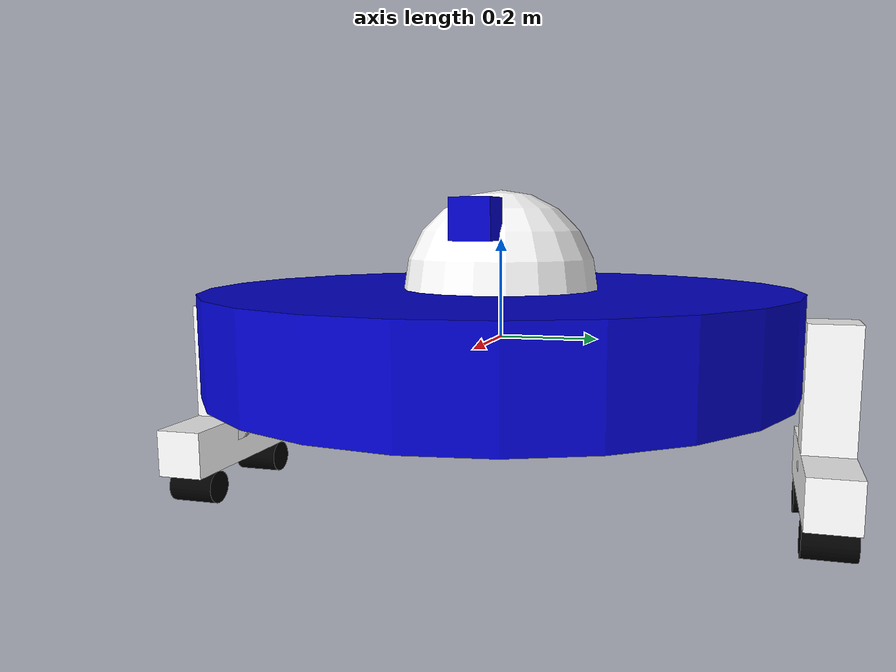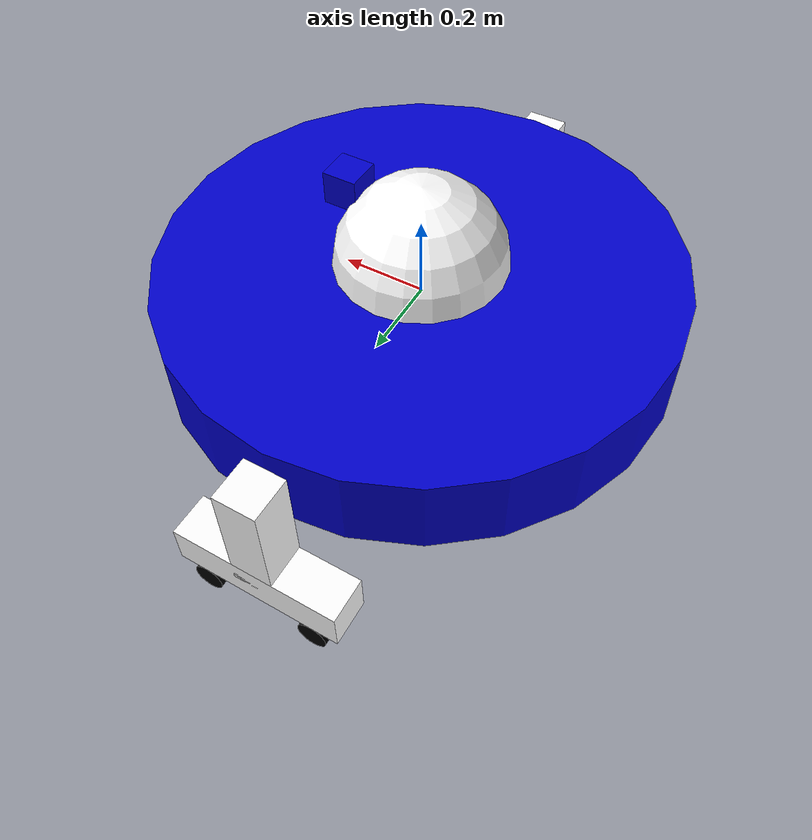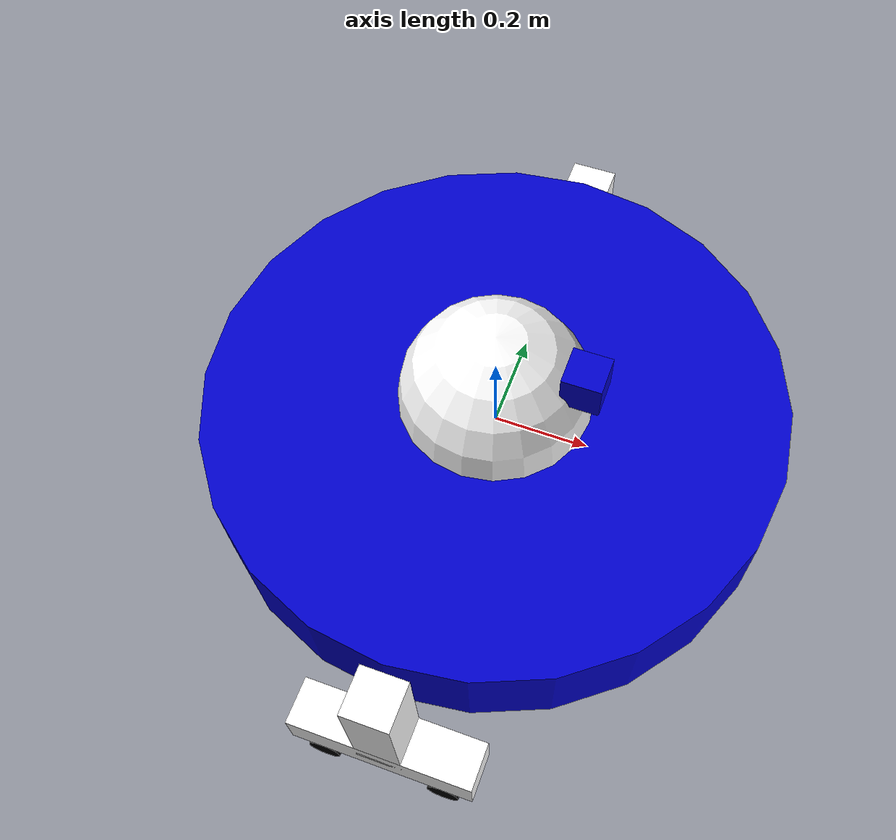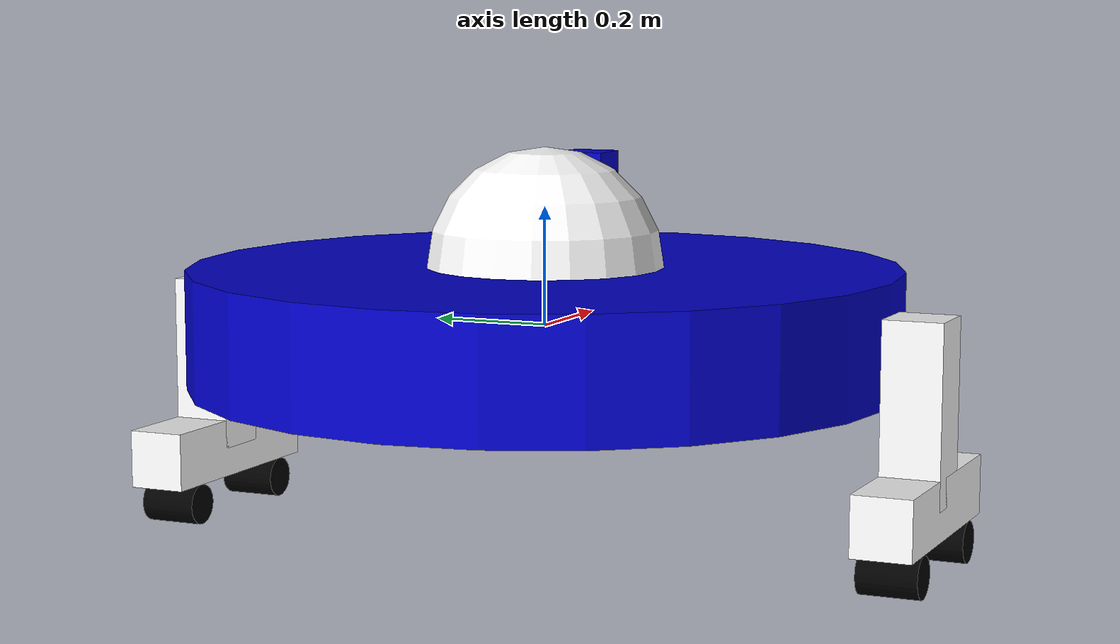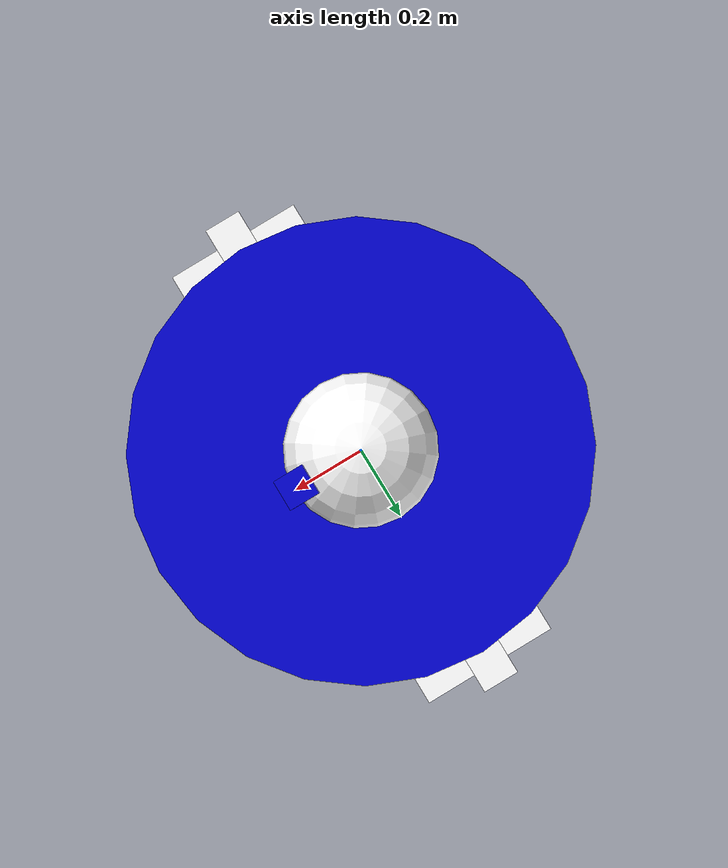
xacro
<?xml version="1.0"?>
<robot name="visual" xmlns:xacro="http://www.ros.org/wiki/xacro">

  <!-- Константы -->
  <xacro:property name="M_PI" value="3.1415926535897931" />

  <!-- Размеры -->
  <xacro:property name="base_radius" value="0.6" />
  <xacro:property name="base_length" value="0.2" />

  <xacro:property name="leg_length" value="0.6" />
  <xacro:property name="leg_width" value="0.3" />
  <xacro:property name="leg_thickness" value="0.1" />

  <xacro:property name="base_width" value="0.4" />
  <xacro:property name="base_height" value="0.1" />

  <xacro:property name="wheel_radius" value="0.035" />
  <xacro:property name="wheel_length" value="0.1" />

  <xacro:property name="head_radius" value="0.2" />
  <xacro:property name="box_size" value="0.08" />

  <!-- Позиции -->
  <xacro:property name="leg_offset" value="0.65" />
  <xacro:property name="wheel_offset" value="0.133333333333" />

  <!-- Материалы -->
  <material name="blue">
    <color rgba="0 0 0.8 1"/>
  </material>
  <material name="black">
    <color rgba="0 0 0 1"/>
  </material>
  <material name="white">
    <color rgba="1 1 1 1"/>
  </material>

  <!-- Макрос для создания ноги -->
  <xacro:macro name="create_leg" params="side">
    <link name="${side}_leg">
      <visual>
        <geometry>
          <box size="${leg_width} ${leg_thickness} ${leg_thickness}"/>
        </geometry>
        <origin rpy="0 ${M_PI/2} 0" xyz="0 0 -${leg_width/2}"/>
        <material name="white"/>
      </visual>
    </link>

    <joint name="base_to_${side}_leg" type="fixed">
      <parent link="map"/>
      <child link="${side}_leg"/>
      <origin xyz="0 ${(1 if side == 'left' else -1) * leg_offset} ${leg_thickness/2}"/>
    </joint>

    <link name="${side}_base">
      <visual>
        <geometry>
          <box size="${base_width} ${base_height} ${base_height}"/>
        </geometry>
        <material name="white"/>
      </visual>
    </link>

    <joint name="${side}_base_joint" type="fixed">
      <parent link="${side}_leg"/>
      <child link="${side}_base"/>
      <origin xyz="0 0 -${leg_width}"/>
    </joint>

    <!-- Макрос для создания колеса -->
    <xacro:macro name="create_wheel" params="position">
      <link name="${side}_${position}_wheel">
        <visual>
          <origin rpy="${M_PI/2} 0 0" xyz="0 0 0"/>
          <geometry>
            <cylinder length="${wheel_length}" radius="${wheel_radius}"/>
          </geometry>
          <material name="black"/>
        </visual>
      </link>

      <joint name="${side}_${position}_wheel_joint" type="fixed">
        <parent link="${side}_base"/>
        <child link="${side}_${position}_wheel"/>
        <origin xyz="${(1 if position == 'front' else -1) * wheel_offset} 0 -0.085" rpy="0 0 0"/>
      </joint>
    </xacro:macro>

    <!-- Создание переднего и заднего колеса -->
    <xacro:create_wheel position="front"/>
    <xacro:create_wheel position="back"/>
  </xacro:macro>

  <!-- Основная база -->
  <link name="map">
    <visual>
      <geometry>
        <cylinder length="${base_length}" radius="${base_radius}"/>
      </geometry>
      <material name="blue"/>
    </visual>
  </link>

  <!-- Создание ног -->
  <xacro:create_leg side="right"/>
  <xacro:create_leg side="left"/>

  <!-- Голова -->
  <link name="head">
    <visual>
      <geometry>
        <sphere radius="${head_radius}"/>
      </geometry>
      <material name="white"/>
    </visual>
  </link>

  <joint name="head_swivel" type="fixed">
    <parent link="map"/>
    <child link="head"/>
    <origin xyz="0 0 ${base_length/2}"/>
  </joint>

  <!-- Коробка на голове -->
  <link name="box">
    <visual>
      <geometry>
        <box size="${box_size} ${box_size} ${box_size}"/>
      </geometry>
      <material name="blue"/>
    </visual>
  </link>

  <joint name="tobox" type="fixed">
    <parent link="head"/>
    <child link="box"/>
    <origin xyz="0.1814 0 0.1414"/>
  </joint>

</robot>
